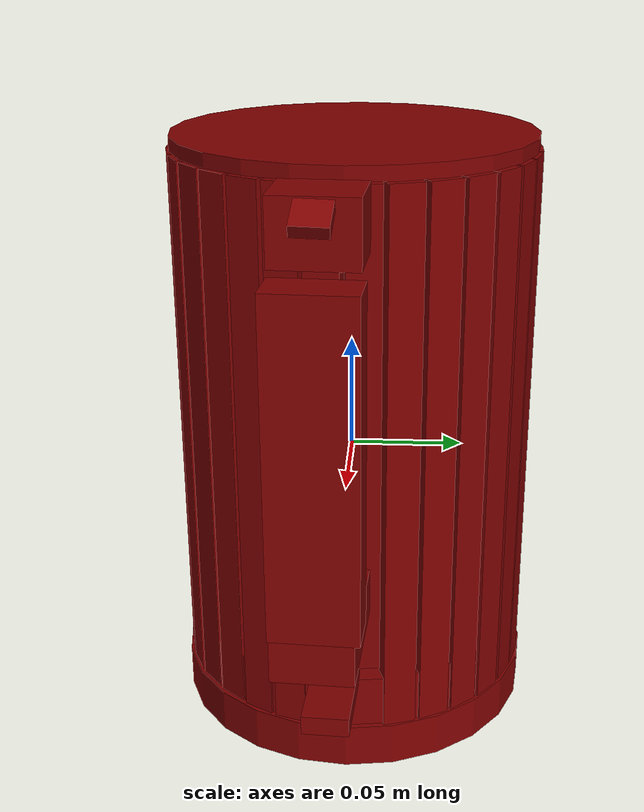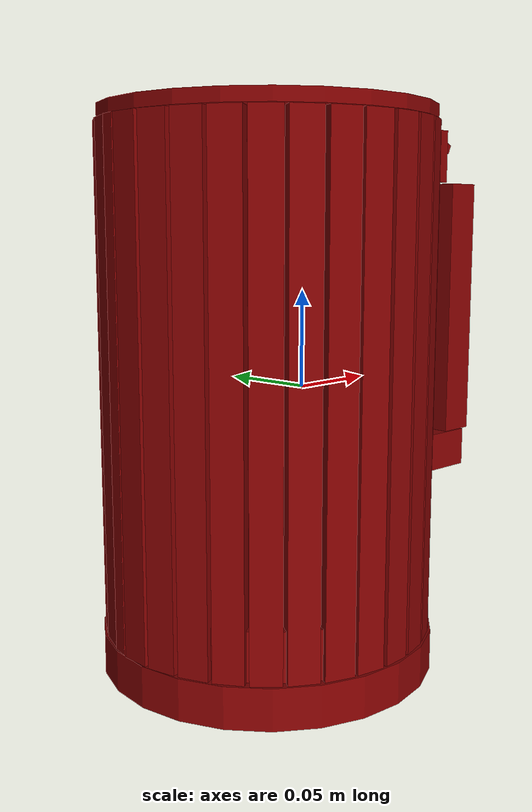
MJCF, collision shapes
<?xml version='1.0' encoding='UTF-8'?>
<mujoco model="model">
  <compiler angle="radian"/>
  <asset>
    <mesh file="visuals/Body001.obj" name="Body001_vis"/>
    <mesh file="visuals/Button001.obj" name="Button001_vis"/>
    <mesh file="visuals/Handle001.obj" name="Handle001_vis"/>
    <mesh file="visuals/Lever001.obj" name="Lever001_vis"/>
    <mesh file="visuals/Lid001.obj" name="Lid001_vis"/>
    <texture file="visuals/T_BC001.png" name="Body001_material" type="2d"/>
    <material name="Body001_material" rgba="1 1 1 1.0" texture="Body001_material" shininess="1" specular="1"/>
    <texture file="visuals/T_BC001.png" name="Handle001_material" type="2d"/>
    <material name="Handle001_material" rgba="1 1 1 1.0" texture="Handle001_material" shininess="1" specular="1"/>
    <texture file="visuals/T_BC001.png" name="Button001_material" type="2d"/>
    <material name="Button001_material" rgba="1 1 1 1.0" texture="Button001_material" shininess="1" specular="1"/>
    <texture file="visuals/T_BC001.png" name="Lever001_material" type="2d"/>
    <material name="Lever001_material" rgba="1 1 1 1.0" texture="Lever001_material" shininess="1" specular="1"/>
    <texture file="visuals/T_BC001.png" name="Lid001_material" type="2d"/>
    <material name="Lid001_material" rgba="1 1 1 1.0" texture="Lid001_material" shininess="1" specular="1"/>
  </asset>
  <default>
    <default class="visual">
      <geom conaffinity="0" contype="0" group="1" type="mesh"/>
    </default>
    <default class="collision">
      <geom group="0" rgba="0.5 0 0 0.5"/>
    </default>
    <default class="spawn">
      <geom group="0" rgba="1 1 1 0.5" contype="0" conaffinity="0"/>
      <site group="0" rgba="1 1 1 0.5"/>
    </default>
    <default class="region">
      <geom group="1" conaffinity="0" contype="0" rgba="0 1 0 0"/>
    </default>
  </default>
  <worldbody>
    <body>
      <body name="object">
        <geom mesh="Body001_vis" type="mesh" solimp="0.998 0.998 0.001" solref="0.001 1" density="100" friction="0.95 0.3 0.1" class="visual" material="Body001_material"/>
        <geom class="collision" type="cylinder" pos="-0.02671791799366474 -3.801914499490522e-05 -0.12847945094108582" size="0.08444634824991226 0.010209722444415092" quat="1.0 0.0 0.0 0.0"/>
        <body name="Handle001">
          <joint axis="0.0 0.0 1.0" pos="0.0 3.725290298461914e-09 0.009514182806015015" limited="true" name="Handle001_joint" range="0.0 0.1" type="slide" damping="1" frictionloss="1" armature=".01" stiffness="0.05"/>
          <geom mesh="Handle001_vis" type="mesh" solimp="0.998 0.998 0.001" solref="0.001 1" density="100" friction="0.95 0.3 0.1" class="visual" material="Handle001_material"/>
          <geom class="collision" type="box" pos="-0.026730913668870926 -0.07860982418060303 0.0067055970430374146" size="0.007475946098566055 0.0043631247244775295 0.12471074610948563" quat="1.0 0.0 0.0 0.0"/>
          <geom class="collision" type="box" pos="0.0047739241272211075 -0.07180212438106537 0.0067055970430374146" size="0.007475841790437698 0.004363126587122679 0.12471074610948563" quat="4.238201825046417e-07 0.20617419481277466 -0.9785153269767761 8.929941941460129e-08"/>
          <geom class="collision" type="box" pos="-0.010687800124287605 -0.07686561346054077 0.0067055970430374146" size="0.007475842721760273 0.004363126587122679 0.12471074610948563" quat="4.306424443711876e-07 0.10693040490150452 -0.9942665100097656 4.6314312385220546e-08"/>
          <geom class="collision" type="box" pos="0.018879355862736702 -0.06330269575119019 0.0067055970430374146" size="0.007475842721760273 0.004363126587122679 0.12471074610948563" quat="4.0854882854546304e-07 0.3320642113685608 -0.9432567954063416 1.4382553104042017e-07"/>
          <geom class="collision" type="box" pos="0.03108597733080387 -0.05218110606074333 0.0067055970430374146" size="0.007475842721760273 0.004363126587122679 0.12471074610948563" quat="3.938663155622635e-07 0.41601479053497314 -0.9093578457832336 1.801867171025151e-07"/>
          <geom class="collision" type="box" pos="0.04094170033931732 -0.039193253964185715 0.0067055970430374146" size="0.007475842721760273 0.004363126587122679 0.12471074610948563" quat="3.747649941487907e-07 0.5013291239738464 -0.865256667137146 2.1713849207571911e-07"/>
          <geom class="collision" type="box" pos="0.04766036570072174 -0.02450411207973957 0.0067055970430374146" size="0.007475842721760273 0.004363126587122679 0.12471074610948563" quat="3.501059211430402e-07 0.588738203048706 -0.8083238005638123 2.5499761591163406e-07"/>
          <geom class="collision" type="box" pos="0.05149063467979431 -0.00894191674888134 0.02226334810256958" size="0.00747585529461503 0.004363126587122679 0.10915300250053406" quat="3.263175756273995e-07 0.6575611233711243 -0.7534012198448181 2.8480656055762665e-07"/>
          <geom class="collision" type="box" pos="0.05161621421575546 0.007283348590135574 0.02225436270236969" size="0.0074758571572601795 0.004363126587122679 0.10916198045015335" quat="-2.147158397747262e-07 -0.7387588024139404 0.6739699244499207 -3.4737618648250645e-07"/>
          <geom class="collision" type="box" pos="0.048476651310920715 0.023106751963496208 0.0067055970430374146" size="0.007475841324776411 0.004363126587122679 0.12471074610948563" quat="2.970163279769622e-07 0.8089416027069092 -0.5878890156745911 2.802756000619411e-07"/>
          <geom class="collision" type="box" pos="0.04207193851470947 0.038025956600904465 0.0067055970430374146" size="0.007475842256098986 0.004363126587122679 0.12471074610948563" quat="-1.3982163693526672e-07 -0.8600683212280273 0.5101788640022278 -3.836969142412272e-07"/>
          <geom class="collision" type="box" pos="0.03265325725078583 0.051212128251791 0.0067055970430374146" size="0.007475842256098986 0.004363127052783966 0.12471074610948563" quat="2.359989395017692e-07 0.9088815450668335 -0.4170543849468231 3.3328311133118405e-07"/>
          <geom class="collision" type="box" pos="0.021162452176213264 0.062451768666505814 0.0067055970430374146" size="0.007475841324776411 0.004363126587122679 0.12471074610948563" quat="2.0226659103173006e-07 0.945317804813385 -0.32615071535110474 3.5476944049150916e-07"/>
          <geom class="collision" type="box" pos="0.007139069959521294 0.07071928679943085 0.0067055970430374146" size="0.007475841790437698 0.0043631261214613914 0.12471074610948563" quat="1.578725346007559e-07 0.9778256416320801 -0.20942065119743347 3.7662911722691206e-07"/>
          <geom class="collision" type="box" pos="-0.007704092189669609 0.07618735730648041 0.0067055970430374146" size="0.007475842721760273 0.004363126587122679 0.12471074610948563" quat="1.28894257045431e-07 0.9908782243728638 -0.13476020097732544 3.875076970416558e-07"/>
          <geom class="collision" type="box" pos="-0.023532724007964134 0.07858562469482422 0.0067055970430374146" size="0.007475842721760273 0.004363127052783966 0.12471074610948563" quat="8.481140412186505e-08 0.9997295141220093 -0.023256530985236168 3.9948201902006986e-07"/>
          <geom class="collision" type="box" pos="-0.0394921749830246 0.0774955004453659 0.0067055970430374146" size="0.007475841324776411 0.004363126587122679 0.12471074610948563" quat="1.0430600383415367e-07 -0.9973849654197693 -0.07227186858654022 -3.9483333580392355e-07"/>
          <geom class="collision" type="box" pos="-0.05497196316719055 0.07330942153930664 0.0067055970430374146" size="0.007475842721760273 0.004363127052783966 0.12471074610948563" quat="5.120769919209067e-10 0.9829936623573303 0.18363963067531586 4.0837878145794093e-07"/>
          <geom class="collision" type="box" pos="-0.0693180188536644 0.06594017148017883 0.0067055970430374146" size="0.007475841790437698 0.004363126587122679 0.12471074610948563" quat="-4.540866882507544e-08 0.9561119079589844 0.2930017411708832 4.058462934608542e-07"/>
          <geom class="collision" type="box" pos="-0.0816582441329956 0.05595461651682854 0.0067055970430374146" size="0.007475842721760273 0.004363126587122679 0.12471074610948563" quat="2.232767712939676e-07 -0.9239467978477478 -0.38252103328704834 -3.419366407797497e-07"/>
          <geom class="collision" type="box" pos="-0.09186182916164398 0.043788809329271317 0.0067055970430374146" size="0.007475842721760273 0.004363127052783966 0.12471074610948563" quat="-1.2095752310870012e-07 0.8839080333709717 0.4676607847213745 3.9005453800200485e-07"/>
          <geom class="collision" type="box" pos="-0.09957993030548096 0.029922401532530785 0.0067055970430374146" size="0.007475842721760273 0.004363126587122679 0.12471074610948563" quat="2.830099958828214e-07 -0.8366203308105469 -0.5477831959724426 -2.944121320069826e-07"/>
          <geom class="collision" type="box" pos="-0.04285489022731781 -0.07687678933143616 0.0067055970430374146" size="0.00747584318742156 0.004363127052783966 0.12471074610948563" quat="4.301141984797141e-07 -0.11771966516971588 -0.9930468797683716 -5.0987374322630785e-08"/>
          <geom class="collision" type="box" pos="-0.058050379157066345 -0.07210464775562286 0.0067055970430374146" size="0.007475843653082848 0.004363126587122679 0.12471074610948563" quat="4.2420293766554096e-07 -0.2019345909357071 -0.9793990254402161 -8.746308566287553e-08"/>
          <geom class="collision" type="box" pos="-0.0722462385892868 -0.06414772570133209 0.0067055970430374146" size="0.007475842721760273 0.004363126587122679 0.12471074610948563" quat="4.1283601603936404e-07 -0.3024821877479553 -0.9531550407409668 -1.310127828446639e-07"/>
          <geom class="collision" type="box" pos="-0.08436495810747147 -0.05372437462210655 0.0067055970430374146" size="0.007475842721760273 0.004363126587122679 0.12471074610948563" quat="3.973850084548758e-07 -0.3977776765823364 -0.9174818396568298 -1.7228778403932665e-07"/>
          <geom class="collision" type="box" pos="-0.09397202730178833 -0.04077890142798424 0.0067055970430374146" size="0.007475842721760273 0.004363126587122679 0.12471074610948563" quat="3.7910510286565113e-07 -0.4836215674877167 -0.8752772212028503 -2.094689932619076e-07"/>
          <geom class="collision" type="box" pos="-0.10098370909690857 -0.026441561058163643 0.0067055970430374146" size="0.007475841790437698 0.004363126587122679 0.12471074610948563" quat="3.5722160873774556e-07 -0.5654937028884888 -0.8247526288032532 -2.4492990746693977e-07"/>
          <geom class="collision" type="box" pos="-0.10532677173614502 -0.010743741877377033 0.0067055970430374146" size="0.007475839927792549 0.004363126587122679 0.12471074610948563" quat="3.32345479137075e-07 -0.6412659883499146 -0.7673186659812927 -2.7774882482844987e-07"/>
          <geom class="collision" type="box" pos="-0.10621631145477295 0.0053726849146187305 0.0067055970430374146" size="0.007475842721760273 0.004363127052783966 0.12471074610948563" quat="-2.2257719933804765e-07 0.7232064008712769 0.6906319856643677 3.423924113121757e-07"/>
          <geom class="collision" type="box" pos="-0.10431286692619324 0.018053101375699043 0.0067055970430374146" size="0.0043244315311312675 0.004363126587122679 0.12471074610948563" quat="3.087532149947947e-07 -0.7830078601837158 -0.6220118403434753 -2.6729119895207987e-07"/>
          <geom class="collision" type="box" pos="0.07473324239253998 -0.0084442850202322 0.12013216316699982" size="0.01504150778055191 0.017996322363615036 0.013837083242833614" quat="0.9994867444038391 0.0 0.0 -0.03203532472252846"/>
          <geom class="collision" type="box" pos="0.08512285351753235 -0.008336447179317474 -0.04581950604915619" size="0.02877083420753479 0.01722337305545807 0.010504625737667084" quat="0.9994867444038391 0.0 0.0 -0.03203532472252846"/>
          <geom class="collision" type="box" pos="0.10820916295051575 -0.0083364462479949 0.03553427755832672" size="0.010158251971006393 0.01841774210333824 0.07049798220396042" quat="0.9994867444038391 0.0 0.0 -0.03203532472252846"/>
          <geom class="collision" type="cylinder" pos="-0.025701360777020454 0.0 -0.1057073324918747" size="0.08158671855926514 0.01201014593243599" quat="1.0 0.0 0.0 0.0"/>
          <body name="Button001">
            <joint axis="0.0 0.0 -1.0" pos="0.09977854788303375 -0.009066810831427574 0.12854896485805511" limited="true" name="Button001_joint" range="0.0 0.003" type="slide" damping="1" frictionloss="1" armature=".01" stiffness="0.05" springref="-2"/>
            <geom mesh="Button001_vis" type="mesh" solimp="0.998 0.998 0.001" solref="0.001 1" density="100" friction="0.95 0.3 0.1" class="visual" material="Button001_material"/>
            <geom class="collision" type="box" pos="0.10000699758529663 -0.00898909755051136 0.12839825451374054" size="0.007758486550301313 0.007531555835157633 0.002618076279759407" quat="0.974043607711792 -0.006441115401685238 0.22453688085079193 -0.027941642329096794"/>
          </body>
          <body name="Lever001">
            <joint axis="0.0 0.0 -1.0" pos="0.06362968683242798 -0.0050893984735012054 -0.09135080873966217" limited="true" name="Lever001_joint" range="0.0 0.005" type="slide" damping="1" frictionloss="1" armature=".01" stiffness="0.05" springref="-2"/>
            <geom mesh="Lever001_vis" type="mesh" solimp="0.998 0.998 0.001" solref="0.001 1" density="100" friction="0.95 0.3 0.1" class="visual" material="Lever001_material"/>
            <geom class="collision" type="box" pos="0.07267636060714722 -0.005488235969096422 -0.09124602377414703" size="0.02118562161922455 0.010291109792888165 0.004289291333407164" quat="0.9995887875556946 0.0 0.0 -0.02867441438138485"/>
            <geom class="collision" type="box" pos="0.05024108290672302 -0.00422193668782711 -0.0913337767124176" size="0.0007868842221796513 0.005531880538910627 0.0032466461416333914" quat="1.0 0.0 0.0 0.0"/>
          </body>
          <body name="Lid001">
            <joint axis="0.0758562833070755 0.9971187710762024 0.0" pos="0.05951591581106186 -0.006607983261346817 0.13687191903591156" limited="true" name="Lid001_joint" range="0.0 1.5707963267948966" type="hinge" damping="1" frictionloss="1" armature=".01" stiffness="0.05"/>
            <geom mesh="Lid001_vis" type="mesh" solimp="0.998 0.998 0.001" solref="0.001 1" density="100" friction="0.95 0.3 0.1" class="visual" material="Lid001_material"/>
            <geom class="collision" type="cylinder" pos="-0.02671791985630989 -3.8019210478523746e-05 0.12465052306652069" size="0.07263515889644623 0.00658641429618001" quat="1.0 0.0 0.0 0.0"/>
            <geom class="collision" type="cylinder" pos="-0.02671791799366474 -3.801915590884164e-05 0.13511736690998077" size="0.08198241889476776 0.0031755976378917694" quat="1.0 0.0 0.0 0.0"/>
          </body>
        </body>
        <geom class="region" name="reg_main" type="box" pos="-1.862645149230957e-09 0.0 -7.450580596923828e-09" size="0.11930246651172638 0.08467355370521545 0.1387055665254593"/>
      </body>
    </body>
  </worldbody>
  <actuator>
    <motor name="Handle001_joint_actuator" joint="Handle001_joint" gear="10"/>
    <motor name="Button001_joint_actuator" joint="Button001_joint" gear="0.5"/>
    <motor name="Lever001_joint_actuator" joint="Lever001_joint" gear="0.5"/>
    <motor name="Lid001_joint_actuator" joint="Lid001_joint" gear="0.5"/>
  </actuator>
</mujoco>
